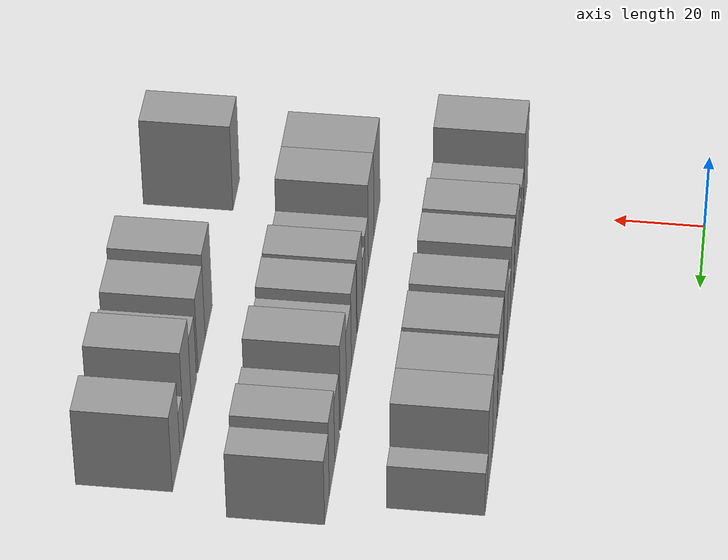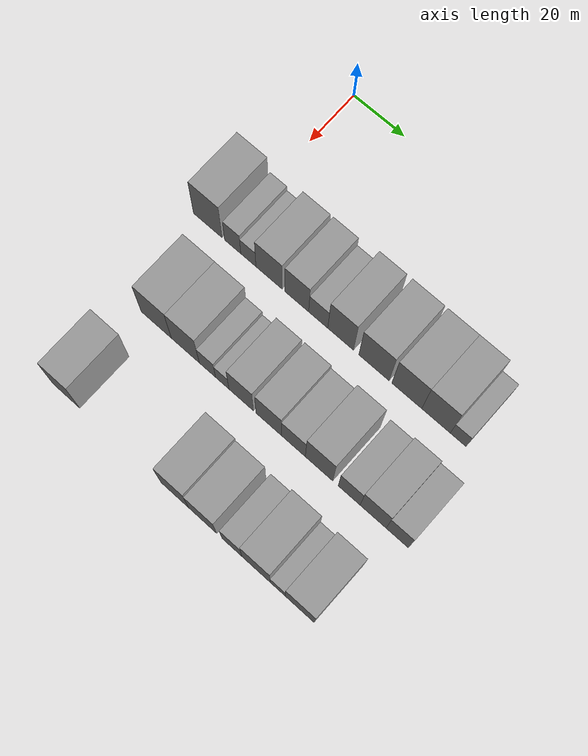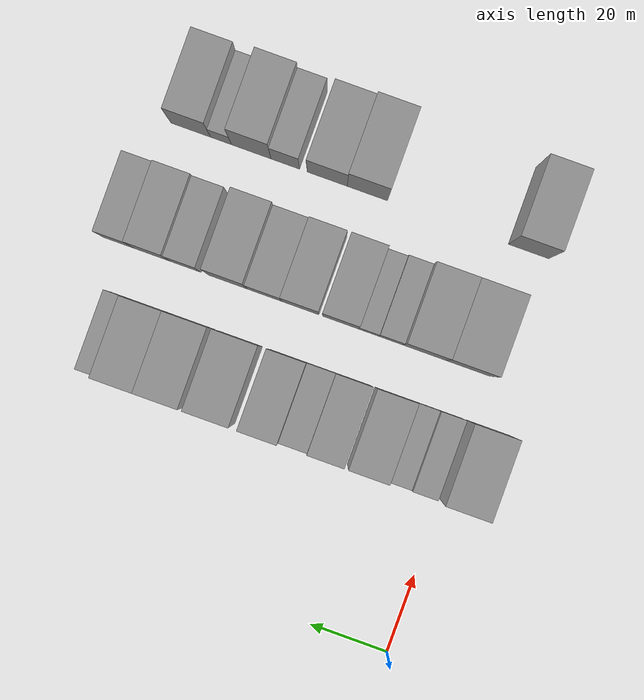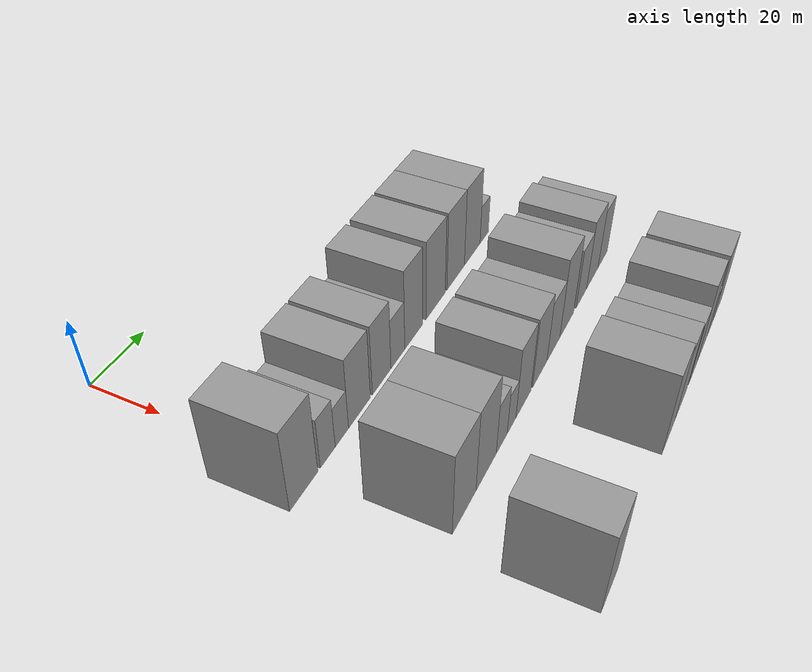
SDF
<sdf version="1.6">
 <world name="default">
  <model name="building_40">
   <static>1</static>
   <pose>50.0000 -4.5184 0 0.000000 0.000000 0.000000</pose>
   <link name="link">
    <pose>0 0 12.00 0 0 0</pose>
    <collision name="collision"><geometry><box><size>20.0000 11.3580 24.0000</size></box></geometry></collision>
    <visual name="visual">
     <cast_shadows>0</cast_shadows>
     <geometry><box><size>20.0000 11.3580 24.0000</size></box></geometry>
     <material>
      <script>
       <uri>model://grey_wall/materials/scripts</uri>
       <uri>model://grey_wall/materials/textures</uri>
       <name>vrc/grey_wall</name>
      </script>
     </material>
    </visual>
   </link>
  </model>
  <model name="building_41">
   <static>1</static>
   <pose>50.0000 5.3556 0 0.000000 0.000000 0.000000</pose>
   <link name="link">
    <pose>0 0 7.50 0 0 0</pose>
    <collision name="collision"><geometry><box><size>20.0000 6.3901 15.0000</size></box></geometry></collision>
    <visual name="visual">
     <cast_shadows>0</cast_shadows>
     <geometry><box><size>20.0000 6.3901 15.0000</size></box></geometry>
     <material>
      <script>
       <uri>model://grey_wall/materials/scripts</uri>
       <uri>model://grey_wall/materials/textures</uri>
       <name>vrc/grey_wall</name>
      </script>
     </material>
    </visual>
   </link>
  </model>
  <model name="building_42">
   <static>1</static>
   <pose>50.0000 11.5126 0 0.000000 0.000000 0.000000</pose>
   <link name="link">
    <pose>0 0 6.00 0 0 0</pose>
    <collision name="collision"><geometry><box><size>20.0000 5.9239 12.0000</size></box></geometry></collision>
    <visual name="visual">
     <cast_shadows>0</cast_shadows>
     <geometry><box><size>20.0000 5.9239 12.0000</size></box></geometry>
     <material>
      <script>
       <uri>model://grey_wall/materials/scripts</uri>
       <uri>model://grey_wall/materials/textures</uri>
       <name>vrc/grey_wall</name>
      </script>
     </material>
    </visual>
   </link>
  </model>
  <model name="building_43">
   <static>1</static>
   <pose>50.0000 19.5705 0 0.000000 0.000000 0.000000</pose>
   <link name="link">
    <pose>0 0 10.50 0 0 0</pose>
    <collision name="collision"><geometry><box><size>20.0000 10.1919 21.0000</size></box></geometry></collision>
    <visual name="visual">
     <cast_shadows>0</cast_shadows>
     <geometry><box><size>20.0000 10.1919 21.0000</size></box></geometry>
     <material>
      <script>
       <uri>model://grey_wall/materials/scripts</uri>
       <uri>model://grey_wall/materials/textures</uri>
       <name>vrc/grey_wall</name>
      </script>
     </material>
    </visual>
   </link>
  </model>
  <model name="building_44">
   <static>1</static>
   <pose>50.0000 30.2833 0 0.000000 0.000000 0.000000</pose>
   <link name="link">
    <pose>0 0 10.50 0 0 0</pose>
    <collision name="collision"><geometry><box><size>20.0000 9.2336 21.0000</size></box></geometry></collision>
    <visual name="visual">
     <cast_shadows>0</cast_shadows>
     <geometry><box><size>20.0000 9.2336 21.0000</size></box></geometry>
     <material>
      <script>
       <uri>model://grey_wall/materials/scripts</uri>
       <uri>model://grey_wall/materials/textures</uri>
       <name>vrc/grey_wall</name>
      </script>
     </material>
    </visual>
   </link>
  </model>
  <model name="building_45">
   <static>1</static>
   <pose>50.0000 38.5328 0 0.000000 0.000000 0.000000</pose>
   <link name="link">
    <pose>0 0 7.50 0 0 0</pose>
    <collision name="collision"><geometry><box><size>20.0000 7.2654 15.0000</size></box></geometry></collision>
    <visual name="visual">
     <cast_shadows>0</cast_shadows>
     <geometry><box><size>20.0000 7.2654 15.0000</size></box></geometry>
     <material>
      <script>
       <uri>model://grey_wall/materials/scripts</uri>
       <uri>model://grey_wall/materials/textures</uri>
       <name>vrc/grey_wall</name>
      </script>
     </material>
    </visual>
   </link>
  </model>
  <model name="building_46">
   <static>1</static>
   <pose>50.0000 47.0347 0 0.000000 0.000000 0.000000</pose>
   <link name="link">
    <pose>0 0 12.00 0 0 0</pose>
    <collision name="collision"><geometry><box><size>20.0000 9.7384 24.0000</size></box></geometry></collision>
    <visual name="visual">
     <cast_shadows>0</cast_shadows>
     <geometry><box><size>20.0000 9.7384 24.0000</size></box></geometry>
     <material>
      <script>
       <uri>model://grey_wall/materials/scripts</uri>
       <uri>model://grey_wall/materials/textures</uri>
       <name>vrc/grey_wall</name>
      </script>
     </material>
    </visual>
   </link>
  </model>
  <model name="building_47">
   <static>1</static>
   <pose>50.0000 59.5788 0 0.000000 0.000000 0.000000</pose>
   <link name="link">
    <pose>0 0 12.00 0 0 0</pose>
    <collision name="collision"><geometry><box><size>20.0000 11.3498 24.0000</size></box></geometry></collision>
    <visual name="visual">
     <cast_shadows>0</cast_shadows>
     <geometry><box><size>20.0000 11.3498 24.0000</size></box></geometry>
     <material>
      <script>
       <uri>model://grey_wall/materials/scripts</uri>
       <uri>model://grey_wall/materials/textures</uri>
       <name>vrc/grey_wall</name>
      </script>
     </material>
    </visual>
   </link>
  </model>
  <model name="building_48">
   <static>1</static>
   <pose>50.0000 71.7756 0 0.000000 0.000000 0.000000</pose>
   <link name="link">
    <pose>0 0 12.00 0 0 0</pose>
    <collision name="collision"><geometry><box><size>20.0000 11.0438 24.0000</size></box></geometry></collision>
    <visual name="visual">
     <cast_shadows>0</cast_shadows>
     <geometry><box><size>20.0000 11.0438 24.0000</size></box></geometry>
     <material>
      <script>
       <uri>model://grey_wall/materials/scripts</uri>
       <uri>model://grey_wall/materials/textures</uri>
       <name>vrc/grey_wall</name>
      </script>
     </material>
    </visual>
   </link>
  </model>
  <model name="building_49">
   <static>1</static>
   <pose>50.0000 82.5181 0 0.000000 0.000000 0.000000</pose>
   <link name="link">
    <pose>0 0 12.00 0 0 0</pose>
    <collision name="collision"><geometry><box><size>20.0000 10.4412 24.0000</size></box></geometry></collision>
    <visual name="visual">
     <cast_shadows>0</cast_shadows>
     <geometry><box><size>20.0000 10.4412 24.0000</size></box></geometry>
     <material>
      <script>
       <uri>model://grey_wall/materials/scripts</uri>
       <uri>model://grey_wall/materials/textures</uri>
       <name>vrc/grey_wall</name>
      </script>
     </material>
    </visual>
   </link>
  </model>
  <model name="building_50">
   <static>1</static>
   <pose>50.0000 90.5977 0 0.000000 0.000000 0.000000</pose>
   <link name="link">
    <pose>0 0 6.00 0 0 0</pose>
    <collision name="collision"><geometry><box><size>20.0000 5.7179 12.0000</size></box></geometry></collision>
    <visual name="visual">
     <cast_shadows>0</cast_shadows>
     <geometry><box><size>20.0000 5.7179 12.0000</size></box></geometry>
     <material>
      <script>
       <uri>model://grey_wall/materials/scripts</uri>
       <uri>model://grey_wall/materials/textures</uri>
       <name>vrc/grey_wall</name>
      </script>
     </material>
    </visual>
   </link>
  </model>
  <model name="building_117">
   <static>1</static>
   <pose>82.0000 5.0783 0 0.000000 0.000000 0.000000</pose>
   <link name="link">
    <pose>0 0 12.00 0 0 0</pose>
    <collision name="collision"><geometry><box><size>20.0000 11.8753 24.0000</size></box></geometry></collision>
    <visual name="visual">
     <cast_shadows>0</cast_shadows>
     <geometry><box><size>20.0000 11.8753 24.0000</size></box></geometry>
     <material>
      <script>
       <uri>model://grey_wall/materials/scripts</uri>
       <uri>model://grey_wall/materials/textures</uri>
       <name>vrc/grey_wall</name>
      </script>
     </material>
    </visual>
   </link>
  </model>
  <model name="building_118">
   <static>1</static>
   <pose>82.0000 16.4562 0 0.000000 0.000000 0.000000</pose>
   <link name="link">
    <pose>0 0 12.00 0 0 0</pose>
    <collision name="collision"><geometry><box><size>20.0000 10.8805 24.0000</size></box></geometry></collision>
    <visual name="visual">
     <cast_shadows>0</cast_shadows>
     <geometry><box><size>20.0000 10.8805 24.0000</size></box></geometry>
     <material>
      <script>
       <uri>model://grey_wall/materials/scripts</uri>
       <uri>model://grey_wall/materials/textures</uri>
       <name>vrc/grey_wall</name>
      </script>
     </material>
    </visual>
   </link>
  </model>
  <model name="building_119">
   <static>1</static>
   <pose>82.0000 25.0287 0 0.000000 0.000000 0.000000</pose>
   <link name="link">
    <pose>0 0 7.50 0 0 0</pose>
    <collision name="collision"><geometry><box><size>20.0000 6.2645 15.0000</size></box></geometry></collision>
    <visual name="visual">
     <cast_shadows>0</cast_shadows>
     <geometry><box><size>20.0000 6.2645 15.0000</size></box></geometry>
     <material>
      <script>
       <uri>model://grey_wall/materials/scripts</uri>
       <uri>model://grey_wall/materials/textures</uri>
       <name>vrc/grey_wall</name>
      </script>
     </material>
    </visual>
   </link>
  </model>
  <model name="building_120">
   <static>1</static>
   <pose>82.0000 30.7223 0 0.000000 0.000000 0.000000</pose>
   <link name="link">
    <pose>0 0 6.00 0 0 0</pose>
    <collision name="collision"><geometry><box><size>20.0000 5.1226 12.0000</size></box></geometry></collision>
    <visual name="visual">
     <cast_shadows>0</cast_shadows>
     <geometry><box><size>20.0000 5.1226 12.0000</size></box></geometry>
     <material>
      <script>
       <uri>model://grey_wall/materials/scripts</uri>
       <uri>model://grey_wall/materials/textures</uri>
       <name>vrc/grey_wall</name>
      </script>
     </material>
    </visual>
   </link>
  </model>
  <model name="building_121">
   <static>1</static>
   <pose>82.0000 37.9292 0 0.000000 0.000000 0.000000</pose>
   <link name="link">
    <pose>0 0 10.50 0 0 0</pose>
    <collision name="collision"><geometry><box><size>20.0000 9.2912 21.0000</size></box></geometry></collision>
    <visual name="visual">
     <cast_shadows>0</cast_shadows>
     <geometry><box><size>20.0000 9.2912 21.0000</size></box></geometry>
     <material>
      <script>
       <uri>model://grey_wall/materials/scripts</uri>
       <uri>model://grey_wall/materials/textures</uri>
       <name>vrc/grey_wall</name>
      </script>
     </material>
    </visual>
   </link>
  </model>
  <model name="building_122">
   <static>1</static>
   <pose>82.0000 48.3367 0 0.000000 0.000000 0.000000</pose>
   <link name="link">
    <pose>0 0 10.50 0 0 0</pose>
    <collision name="collision"><geometry><box><size>20.0000 9.5238 21.0000</size></box></geometry></collision>
    <visual name="visual">
     <cast_shadows>0</cast_shadows>
     <geometry><box><size>20.0000 9.5238 21.0000</size></box></geometry>
     <material>
      <script>
       <uri>model://grey_wall/materials/scripts</uri>
       <uri>model://grey_wall/materials/textures</uri>
       <name>vrc/grey_wall</name>
      </script>
     </material>
    </visual>
   </link>
  </model>
  <model name="building_123">
   <static>1</static>
   <pose>82.0000 57.5635 0 0.000000 0.000000 0.000000</pose>
   <link name="link">
    <pose>0 0 9.00 0 0 0</pose>
    <collision name="collision"><geometry><box><size>20.0000 8.9298 18.0000</size></box></geometry></collision>
    <visual name="visual">
     <cast_shadows>0</cast_shadows>
     <geometry><box><size>20.0000 8.9298 18.0000</size></box></geometry>
     <material>
      <script>
       <uri>model://grey_wall/materials/scripts</uri>
       <uri>model://grey_wall/materials/textures</uri>
       <name>vrc/grey_wall</name>
      </script>
     </material>
    </visual>
   </link>
  </model>
  <model name="building_124">
   <static>1</static>
   <pose>82.0000 67.0926 0 0.000000 0.000000 0.000000</pose>
   <link name="link">
    <pose>0 0 12.00 0 0 0</pose>
    <collision name="collision"><geometry><box><size>20.0000 10.1286 24.0000</size></box></geometry></collision>
    <visual name="visual">
     <cast_shadows>0</cast_shadows>
     <geometry><box><size>20.0000 10.1286 24.0000</size></box></geometry>
     <material>
      <script>
       <uri>model://grey_wall/materials/scripts</uri>
       <uri>model://grey_wall/materials/textures</uri>
       <name>vrc/grey_wall</name>
      </script>
     </material>
    </visual>
   </link>
  </model>
  <model name="building_125">
   <static>1</static>
   <pose>82.0000 78.1693 0 0.000000 0.000000 0.000000</pose>
   <link name="link">
    <pose>0 0 9.00 0 0 0</pose>
    <collision name="collision"><geometry><box><size>20.0000 8.0248 18.0000</size></box></geometry></collision>
    <visual name="visual">
     <cast_shadows>0</cast_shadows>
     <geometry><box><size>20.0000 8.0248 18.0000</size></box></geometry>
     <material>
      <script>
       <uri>model://grey_wall/materials/scripts</uri>
       <uri>model://grey_wall/materials/textures</uri>
       <name>vrc/grey_wall</name>
      </script>
     </material>
    </visual>
   </link>
  </model>
  <model name="building_126">
   <static>1</static>
   <pose>82.0000 86.8775 0 0.000000 0.000000 0.000000</pose>
   <link name="link">
    <pose>0 0 10.50 0 0 0</pose>
    <collision name="collision"><geometry><box><size>20.0000 9.3914 21.0000</size></box></geometry></collision>
    <visual name="visual">
     <cast_shadows>0</cast_shadows>
     <geometry><box><size>20.0000 9.3914 21.0000</size></box></geometry>
     <material>
      <script>
       <uri>model://grey_wall/materials/scripts</uri>
       <uri>model://grey_wall/materials/textures</uri>
       <name>vrc/grey_wall</name>
      </script>
     </material>
    </visual>
   </link>
  </model>
  <model name="building_127">
   <static>1</static>
   <pose>82.0000 95.5494 0 0.000000 0.000000 0.000000</pose>
   <link name="link">
    <pose>0 0 9.00 0 0 0</pose>
    <collision name="collision"><geometry><box><size>20.0000 7.9524 18.0000</size></box></geometry></collision>
    <visual name="visual">
     <cast_shadows>0</cast_shadows>
     <geometry><box><size>20.0000 7.9524 18.0000</size></box></geometry>
     <material>
      <script>
       <uri>model://grey_wall/materials/scripts</uri>
       <uri>model://grey_wall/materials/textures</uri>
       <name>vrc/grey_wall</name>
      </script>
     </material>
    </visual>
   </link>
  </model>
  <model name="building_198">
   <static>1</static>
   <pose>114.0000 0.5381 0 0.000000 0.000000 0.000000</pose>
   <link name="link">
    <pose>0 0 12.00 0 0 0</pose>
    <collision name="collision"><geometry><box><size>20.0000 10.5245 24.0000</size></box></geometry></collision>
    <visual name="visual">
     <cast_shadows>0</cast_shadows>
     <geometry><box><size>20.0000 10.5245 24.0000</size></box></geometry>
     <material>
      <script>
       <uri>model://grey_wall/materials/scripts</uri>
       <uri>model://grey_wall/materials/textures</uri>
       <name>vrc/grey_wall</name>
      </script>
     </material>
    </visual>
   </link>
  </model>
  <model name="building_199">
   <static>1</static>
   <pose>114.0000 42.4785 0 0.000000 0.000000 0.000000</pose>
   <link name="link">
    <pose>0 0 12.00 0 0 0</pose>
    <collision name="collision"><geometry><box><size>20.0000 10.4521 24.0000</size></box></geometry></collision>
    <visual name="visual">
     <cast_shadows>0</cast_shadows>
     <geometry><box><size>20.0000 10.4521 24.0000</size></box></geometry>
     <material>
      <script>
       <uri>model://grey_wall/materials/scripts</uri>
       <uri>model://grey_wall/materials/textures</uri>
       <name>vrc/grey_wall</name>
      </script>
     </material>
    </visual>
   </link>
  </model>
  <model name="building_200">
   <static>1</static>
   <pose>114.0000 52.9152 0 0.000000 0.000000 0.000000</pose>
   <link name="link">
    <pose>0 0 10.50 0 0 0</pose>
    <collision name="collision"><geometry><box><size>20.0000 10.4213 21.0000</size></box></geometry></collision>
    <visual name="visual">
     <cast_shadows>0</cast_shadows>
     <geometry><box><size>20.0000 10.4213 21.0000</size></box></geometry>
     <material>
      <script>
       <uri>model://grey_wall/materials/scripts</uri>
       <uri>model://grey_wall/materials/textures</uri>
       <name>vrc/grey_wall</name>
      </script>
     </material>
    </visual>
   </link>
  </model>
  <model name="building_201">
   <static>1</static>
   <pose>114.0000 63.8173 0 0.000000 0.000000 0.000000</pose>
   <link name="link">
    <pose>0 0 9.00 0 0 0</pose>
    <collision name="collision"><geometry><box><size>20.0000 7.3829 18.0000</size></box></geometry></collision>
    <visual name="visual">
     <cast_shadows>0</cast_shadows>
     <geometry><box><size>20.0000 7.3829 18.0000</size></box></geometry>
     <material>
      <script>
       <uri>model://grey_wall/materials/scripts</uri>
       <uri>model://grey_wall/materials/textures</uri>
       <name>vrc/grey_wall</name>
      </script>
     </material>
    </visual>
   </link>
  </model>
  <model name="building_202">
   <static>1</static>
   <pose>114.0000 72.6660 0 0.000000 0.000000 0.000000</pose>
   <link name="link">
    <pose>0 0 12.00 0 0 0</pose>
    <collision name="collision"><geometry><box><size>20.0000 10.3144 24.0000</size></box></geometry></collision>
    <visual name="visual">
     <cast_shadows>0</cast_shadows>
     <geometry><box><size>20.0000 10.3144 24.0000</size></box></geometry>
     <material>
      <script>
       <uri>model://grey_wall/materials/scripts</uri>
       <uri>model://grey_wall/materials/textures</uri>
       <name>vrc/grey_wall</name>
      </script>
     </material>
    </visual>
   </link>
  </model>
  <model name="building_203">
   <static>1</static>
   <pose>114.0000 80.5458 0 0.000000 0.000000 0.000000</pose>
   <link name="link">
    <pose>0 0 6.00 0 0 0</pose>
    <collision name="collision"><geometry><box><size>20.0000 5.4453 12.0000</size></box></geometry></collision>
    <visual name="visual">
     <cast_shadows>0</cast_shadows>
     <geometry><box><size>20.0000 5.4453 12.0000</size></box></geometry>
     <material>
      <script>
       <uri>model://grey_wall/materials/scripts</uri>
       <uri>model://grey_wall/materials/textures</uri>
       <name>vrc/grey_wall</name>
      </script>
     </material>
    </visual>
   </link>
  </model>
  <model name="building_204">
   <static>1</static>
   <pose>114.0000 88.4292 0 0.000000 0.000000 0.000000</pose>
   <link name="link">
    <pose>0 0 10.50 0 0 0</pose>
    <collision name="collision"><geometry><box><size>20.0000 10.3215 21.0000</size></box></geometry></collision>
    <visual name="visual">
     <cast_shadows>0</cast_shadows>
     <geometry><box><size>20.0000 10.3215 21.0000</size></box></geometry>
     <material>
      <script>
       <uri>model://grey_wall/materials/scripts</uri>
       <uri>model://grey_wall/materials/textures</uri>
       <name>vrc/grey_wall</name>
      </script>
     </material>
    </visual>
   </link>
  </model>
 </world>
</sdf>
